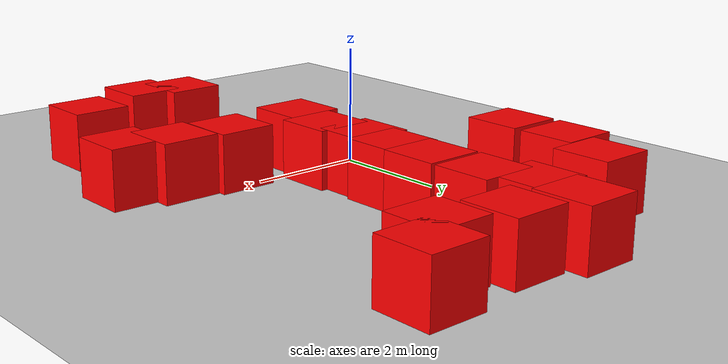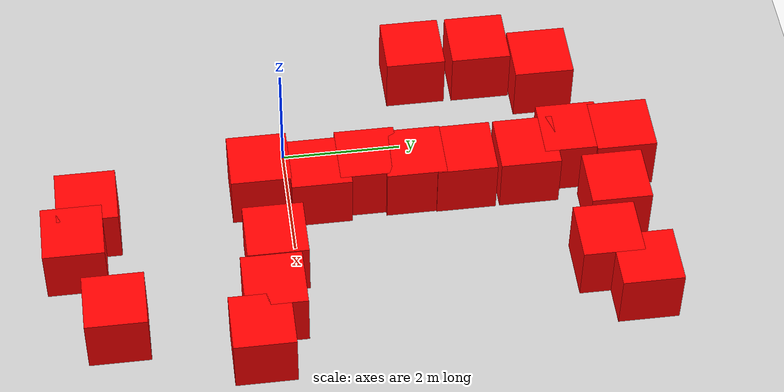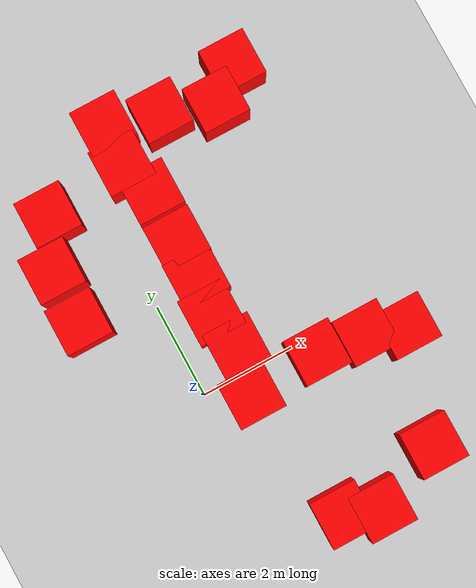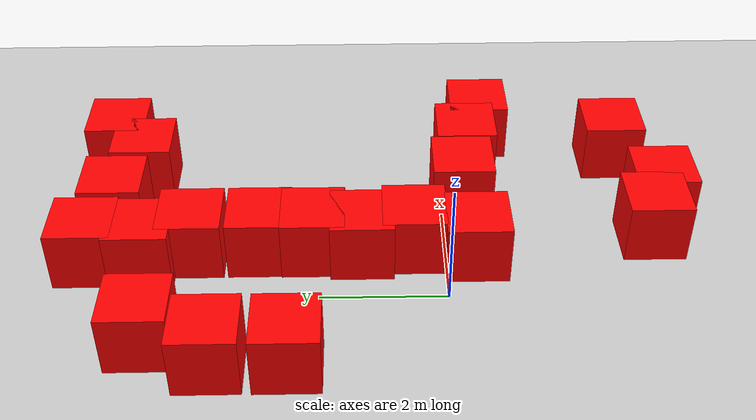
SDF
<sdf version="1.7">
 <world name="default">
  <model name="ground_plane">
   <static>1</static>
   <link name="link">
    <collision name="collision">
     <geometry><plane><normal>0 0 1</normal><size>100 100</size></plane></geometry>
     <surface><friction><ode><mu>100</mu><mu2>50</mu2></ode></friction></surface>
    </collision>
    <visual name="visual">
     <cast_shadows>0</cast_shadows>
     <geometry><plane><normal>0 0 1</normal><size>100 100</size></plane></geometry>
     <material>
      <script><uri>file://media/materials/scripts/gazebo.material</uri><name>Gazebo/Grey</name></script>
     </material>
    </visual>
   </link>
  </model>
  <model name="unit_box">
   <link name="link">
    <inertial>
     <mass>1</mass>
     <inertia>
      <ixx>0.166667</ixx>
      <ixy>0</ixy>
      <ixz>0</ixz>
      <iyy>0.166667</iyy>
      <iyz>0</iyz>
      <izz>0.166667</izz>
     </inertia>
    </inertial>
    <visual name="visual">
     <geometry><box><size>1 1 1</size></box></geometry>
     <material>
      <script><name>Gazebo/Grey</name><uri>file://media/materials/scripts/gazebo.material</uri></script>
      <shader type="pixel"><normal_map>__default__</normal_map></shader>
      <ambient>1 0 0 0</ambient>
      <diffuse>0.7 0.7 0.7 1</diffuse>
      <specular>0.01 0.01 0.01 1</specular>
      <emissive>0 0 0 1</emissive>
     </material>
    </visual>
    <collision name="collision">
     <geometry><box><size>1 1 1</size></box></geometry>
     <surface>
      <friction>
       <ode><mu>1</mu><mu2>1</mu2><fdir1>0 0 0</fdir1><slip1>0</slip1><slip2>0</slip2></ode>
       <torsional>
        <coefficient>1</coefficient>
        <patch_radius>0</patch_radius>
        <surface_radius>0</surface_radius>
        <use_patch_radius>1</use_patch_radius>
        <ode><slip>0</slip></ode>
       </torsional>
      </friction>
      <bounce><restitution_coefficient>0</restitution_coefficient><threshold>1e+06</threshold></bounce>
      <contact>
       <collide_without_contact>0</collide_without_contact>
       <collide_without_contact_bitmask>1</collide_without_contact_bitmask>
       <collide_bitmask>1</collide_bitmask>
       <ode>
        <soft_cfm>0</soft_cfm>
        <soft_erp>0.2</soft_erp>
        <kp>1e+13</kp>
        <kd>1</kd>
        <max_vel>0.01</max_vel>
        <min_depth>0</min_depth>
       </ode>
       <bullet>
        <split_impulse>1</split_impulse>
        <split_impulse_penetration_threshold>-0.01</split_impulse_penetration_threshold>
        <soft_cfm>0</soft_cfm>
        <soft_erp>0.2</soft_erp>
        <kp>1e+13</kp>
        <kd>1</kd>
       </bullet>
      </contact>
     </surface>
    </collision>
   </link>
   <static>0</static>
   <pose>0.827845 -0.466795 0.5 0 -0 0</pose>
  </model>
  <model name="unit_box_clone_clone_0">
   <link name="link">
    <inertial>
     <mass>1</mass>
     <inertia>
      <ixx>0.166667</ixx>
      <ixy>0</ixy>
      <ixz>0</ixz>
      <iyy>0.166667</iyy>
      <iyz>0</iyz>
      <izz>0.166667</izz>
     </inertia>
    </inertial>
    <visual name="visual">
     <geometry><box><size>1 1 1</size></box></geometry>
     <material>
      <script><name>Gazebo/Grey</name><uri>file://media/materials/scripts/gazebo.material</uri></script>
      <shader type="pixel"><normal_map>__default__</normal_map></shader>
      <ambient>1 0 0 0</ambient>
      <diffuse>0.7 0.7 0.7 1</diffuse>
      <specular>0.01 0.01 0.01 1</specular>
      <emissive>0 0 0 1</emissive>
     </material>
    </visual>
    <collision name="collision">
     <geometry><box><size>1 1 1</size></box></geometry>
     <surface>
      <friction>
       <ode><mu>1</mu><mu2>1</mu2><fdir1>0 0 0</fdir1><slip1>0</slip1><slip2>0</slip2></ode>
       <torsional>
        <coefficient>1</coefficient>
        <patch_radius>0</patch_radius>
        <surface_radius>0</surface_radius>
        <use_patch_radius>1</use_patch_radius>
        <ode><slip>0</slip></ode>
       </torsional>
      </friction>
      <bounce><restitution_coefficient>0</restitution_coefficient><threshold>1e+06</threshold></bounce>
      <contact>
       <collide_without_contact>0</collide_without_contact>
       <collide_without_contact_bitmask>1</collide_without_contact_bitmask>
       <collide_bitmask>1</collide_bitmask>
       <ode>
        <soft_cfm>0</soft_cfm>
        <soft_erp>0.2</soft_erp>
        <kp>1e+13</kp>
        <kd>1</kd>
        <max_vel>0.01</max_vel>
        <min_depth>0</min_depth>
       </ode>
       <bullet>
        <split_impulse>1</split_impulse>
        <split_impulse_penetration_threshold>-0.01</split_impulse_penetration_threshold>
        <soft_cfm>0</soft_cfm>
        <soft_erp>0.2</soft_erp>
        <kp>1e+13</kp>
        <kd>1</kd>
       </bullet>
      </contact>
     </surface>
    </collision>
   </link>
   <static>0</static>
   <pose>0.811864 5.64086 0.5 0 -0 0</pose>
  </model>
  <model name="unit_box_clone_clone_7">
   <link name="link">
    <inertial>
     <mass>1</mass>
     <inertia>
      <ixx>0.166667</ixx>
      <ixy>0</ixy>
      <ixz>0</ixz>
      <iyy>0.166667</iyy>
      <iyz>0</iyz>
      <izz>0.166667</izz>
     </inertia>
    </inertial>
    <visual name="visual">
     <geometry><box><size>1 1 1</size></box></geometry>
     <material>
      <script><name>Gazebo/Grey</name><uri>file://media/materials/scripts/gazebo.material</uri></script>
      <shader type="pixel"><normal_map>__default__</normal_map></shader>
      <ambient>1 0 0 0</ambient>
      <diffuse>0.7 0.7 0.7 1</diffuse>
      <specular>0.01 0.01 0.01 1</specular>
      <emissive>0 0 0 1</emissive>
     </material>
    </visual>
    <collision name="collision">
     <geometry><box><size>1 1 1</size></box></geometry>
     <surface>
      <friction>
       <ode><mu>1</mu><mu2>1</mu2><fdir1>0 0 0</fdir1><slip1>0</slip1><slip2>0</slip2></ode>
       <torsional>
        <coefficient>1</coefficient>
        <patch_radius>0</patch_radius>
        <surface_radius>0</surface_radius>
        <use_patch_radius>1</use_patch_radius>
        <ode><slip>0</slip></ode>
       </torsional>
      </friction>
      <bounce><restitution_coefficient>0</restitution_coefficient><threshold>1e+06</threshold></bounce>
      <contact>
       <collide_without_contact>0</collide_without_contact>
       <collide_without_contact_bitmask>1</collide_without_contact_bitmask>
       <collide_bitmask>1</collide_bitmask>
       <ode>
        <soft_cfm>0</soft_cfm>
        <soft_erp>0.2</soft_erp>
        <kp>1e+13</kp>
        <kd>1</kd>
        <max_vel>0.01</max_vel>
        <min_depth>0</min_depth>
       </ode>
       <bullet>
        <split_impulse>1</split_impulse>
        <split_impulse_penetration_threshold>-0.01</split_impulse_penetration_threshold>
        <soft_cfm>0</soft_cfm>
        <soft_erp>0.2</soft_erp>
        <kp>1e+13</kp>
        <kd>1</kd>
       </bullet>
      </contact>
     </surface>
    </collision>
   </link>
   <static>0</static>
   <pose>1.29425 -3.3393 0.5 0 -0 0</pose>
  </model>
  <model name="unit_box_clone_clone_17">
   <link name="link">
    <inertial>
     <mass>1</mass>
     <inertia>
      <ixx>0.166667</ixx>
      <ixy>0</ixy>
      <ixz>0</ixz>
      <iyy>0.166667</iyy>
      <iyz>0</iyz>
      <izz>0.166667</izz>
     </inertia>
    </inertial>
    <visual name="visual">
     <geometry><box><size>1 1 1</size></box></geometry>
     <material>
      <script><name>Gazebo/Grey</name><uri>file://media/materials/scripts/gazebo.material</uri></script>
      <shader type="pixel"><normal_map>__default__</normal_map></shader>
      <ambient>1 0 0 0</ambient>
      <diffuse>0.7 0.7 0.7 1</diffuse>
      <specular>0.01 0.01 0.01 1</specular>
      <emissive>0 0 0 1</emissive>
     </material>
    </visual>
    <collision name="collision">
     <geometry><box><size>1 1 1</size></box></geometry>
     <surface>
      <friction>
       <ode><mu>1</mu><mu2>1</mu2><fdir1>0 0 0</fdir1><slip1>0</slip1><slip2>0</slip2></ode>
       <torsional>
        <coefficient>1</coefficient>
        <patch_radius>0</patch_radius>
        <surface_radius>0</surface_radius>
        <use_patch_radius>1</use_patch_radius>
        <ode><slip>0</slip></ode>
       </torsional>
      </friction>
      <bounce><restitution_coefficient>0</restitution_coefficient><threshold>1e+06</threshold></bounce>
      <contact>
       <collide_without_contact>0</collide_without_contact>
       <collide_without_contact_bitmask>1</collide_without_contact_bitmask>
       <collide_bitmask>1</collide_bitmask>
       <ode>
        <soft_cfm>0</soft_cfm>
        <soft_erp>0.2</soft_erp>
        <kp>1e+13</kp>
        <kd>1</kd>
        <max_vel>0.01</max_vel>
        <min_depth>0</min_depth>
       </ode>
       <bullet>
        <split_impulse>1</split_impulse>
        <split_impulse_penetration_threshold>-0.01</split_impulse_penetration_threshold>
        <soft_cfm>0</soft_cfm>
        <soft_erp>0.2</soft_erp>
        <kp>1e+13</kp>
        <kd>1</kd>
       </bullet>
      </contact>
     </surface>
    </collision>
   </link>
   <static>0</static>
   <pose>3.37113 -0.462348 0.5 0 -0 0</pose>
  </model>
  <model name="unit_box_clone_clone_19">
   <link name="link">
    <inertial>
     <mass>1</mass>
     <inertia>
      <ixx>0.166667</ixx>
      <ixy>0</ixy>
      <ixz>0</ixz>
      <iyy>0.166667</iyy>
      <iyz>0</iyz>
      <izz>0.166667</izz>
     </inertia>
    </inertial>
    <visual name="visual">
     <geometry><box><size>1 1 1</size></box></geometry>
     <material>
      <script><name>Gazebo/Grey</name><uri>file://media/materials/scripts/gazebo.material</uri></script>
      <shader type="pixel"><normal_map>__default__</normal_map></shader>
      <ambient>1 0 0 0</ambient>
      <diffuse>0.7 0.7 0.7 1</diffuse>
      <specular>0.01 0.01 0.01 1</specular>
      <emissive>0 0 0 1</emissive>
     </material>
    </visual>
    <collision name="collision">
     <geometry><box><size>1 1 1</size></box></geometry>
     <surface>
      <friction>
       <ode><mu>1</mu><mu2>1</mu2><fdir1>0 0 0</fdir1><slip1>0</slip1><slip2>0</slip2></ode>
       <torsional>
        <coefficient>1</coefficient>
        <patch_radius>0</patch_radius>
        <surface_radius>0</surface_radius>
        <use_patch_radius>1</use_patch_radius>
        <ode><slip>0</slip></ode>
       </torsional>
      </friction>
      <bounce><restitution_coefficient>0</restitution_coefficient><threshold>1e+06</threshold></bounce>
      <contact>
       <collide_without_contact>0</collide_without_contact>
       <collide_without_contact_bitmask>1</collide_without_contact_bitmask>
       <collide_bitmask>1</collide_bitmask>
       <ode>
        <soft_cfm>0</soft_cfm>
        <soft_erp>0.2</soft_erp>
        <kp>1e+13</kp>
        <kd>1</kd>
        <max_vel>0.01</max_vel>
        <min_depth>0</min_depth>
       </ode>
       <bullet>
        <split_impulse>1</split_impulse>
        <split_impulse_penetration_threshold>-0.01</split_impulse_penetration_threshold>
        <soft_cfm>0</soft_cfm>
        <soft_erp>0.2</soft_erp>
        <kp>1e+13</kp>
        <kd>1</kd>
       </bullet>
      </contact>
     </surface>
    </collision>
   </link>
   <static>0</static>
   <pose>3.47377 -3 0.5 0 -0 0</pose>
  </model>
  <model name="unit_box_clone_clone_21">
   <link name="link">
    <inertial>
     <mass>1</mass>
     <inertia>
      <ixx>0.166667</ixx>
      <ixy>0</ixy>
      <ixz>0</ixz>
      <iyy>0.166667</iyy>
      <iyz>0</iyz>
      <izz>0.166667</izz>
     </inertia>
    </inertial>
    <visual name="visual">
     <geometry><box><size>1 1 1</size></box></geometry>
     <material>
      <script><name>Gazebo/Grey</name><uri>file://media/materials/scripts/gazebo.material</uri></script>
      <shader type="pixel"><normal_map>__default__</normal_map></shader>
      <ambient>1 0 0 0</ambient>
      <diffuse>0.7 0.7 0.7 1</diffuse>
      <specular>0.01 0.01 0.01 1</specular>
      <emissive>0 0 0 1</emissive>
     </material>
    </visual>
    <collision name="collision">
     <geometry><box><size>1 1 1</size></box></geometry>
     <surface>
      <friction>
       <ode><mu>1</mu><mu2>1</mu2><fdir1>0 0 0</fdir1><slip1>0</slip1><slip2>0</slip2></ode>
       <torsional>
        <coefficient>1</coefficient>
        <patch_radius>0</patch_radius>
        <surface_radius>0</surface_radius>
        <use_patch_radius>1</use_patch_radius>
        <ode><slip>0</slip></ode>
       </torsional>
      </friction>
      <bounce><restitution_coefficient>0</restitution_coefficient><threshold>1e+06</threshold></bounce>
      <contact>
       <collide_without_contact>0</collide_without_contact>
       <collide_without_contact_bitmask>1</collide_without_contact_bitmask>
       <collide_bitmask>1</collide_bitmask>
       <ode>
        <soft_cfm>0</soft_cfm>
        <soft_erp>0.2</soft_erp>
        <kp>1e+13</kp>
        <kd>1</kd>
        <max_vel>0.01</max_vel>
        <min_depth>0</min_depth>
       </ode>
       <bullet>
        <split_impulse>1</split_impulse>
        <split_impulse_penetration_threshold>-0.01</split_impulse_penetration_threshold>
        <soft_cfm>0</soft_cfm>
        <soft_erp>0.2</soft_erp>
        <kp>1e+13</kp>
        <kd>1</kd>
       </bullet>
      </contact>
     </surface>
    </collision>
   </link>
   <static>0</static>
   <pose>0.913254 1.33199 0.5 0 -0 0</pose>
  </model>
  <model name="unit_box_clone_clone_22">
   <link name="link">
    <inertial>
     <mass>1</mass>
     <inertia>
      <ixx>0.166667</ixx>
      <ixy>0</ixy>
      <ixz>0</ixz>
      <iyy>0.166667</iyy>
      <iyz>0</iyz>
      <izz>0.166667</izz>
     </inertia>
    </inertial>
    <visual name="visual">
     <geometry><box><size>1 1 1</size></box></geometry>
     <material>
      <script><name>Gazebo/Grey</name><uri>file://media/materials/scripts/gazebo.material</uri></script>
      <shader type="pixel"><normal_map>__default__</normal_map></shader>
      <ambient>1 0 0 0</ambient>
      <diffuse>0.7 0.7 0.7 1</diffuse>
      <specular>0.01 0.01 0.01 1</specular>
      <emissive>0 0 0 1</emissive>
     </material>
    </visual>
    <collision name="collision">
     <geometry><box><size>1 1 1</size></box></geometry>
     <surface>
      <friction>
       <ode><mu>1</mu><mu2>1</mu2><fdir1>0 0 0</fdir1><slip1>0</slip1><slip2>0</slip2></ode>
       <torsional>
        <coefficient>1</coefficient>
        <patch_radius>0</patch_radius>
        <surface_radius>0</surface_radius>
        <use_patch_radius>1</use_patch_radius>
        <ode><slip>0</slip></ode>
       </torsional>
      </friction>
      <bounce><restitution_coefficient>0</restitution_coefficient><threshold>1e+06</threshold></bounce>
      <contact>
       <collide_without_contact>0</collide_without_contact>
       <collide_without_contact_bitmask>1</collide_without_contact_bitmask>
       <collide_bitmask>1</collide_bitmask>
       <ode>
        <soft_cfm>0</soft_cfm>
        <soft_erp>0.2</soft_erp>
        <kp>1e+13</kp>
        <kd>1</kd>
        <max_vel>0.01</max_vel>
        <min_depth>0</min_depth>
       </ode>
       <bullet>
        <split_impulse>1</split_impulse>
        <split_impulse_penetration_threshold>-0.01</split_impulse_penetration_threshold>
        <soft_cfm>0</soft_cfm>
        <soft_erp>0.2</soft_erp>
        <kp>1e+13</kp>
        <kd>1</kd>
       </bullet>
      </contact>
     </surface>
    </collision>
   </link>
   <static>0</static>
   <pose>1.00322 2.93506 0.5 0 -0 0</pose>
  </model>
  <model name="unit_box_clone_clone_24">
   <link name="link">
    <inertial>
     <mass>1</mass>
     <inertia>
      <ixx>0.166667</ixx>
      <ixy>0</ixy>
      <ixz>0</ixz>
      <iyy>0.166667</iyy>
      <iyz>0</iyz>
      <izz>0.166667</izz>
     </inertia>
    </inertial>
    <visual name="visual">
     <geometry><box><size>1 1 1</size></box></geometry>
     <material>
      <script><name>Gazebo/Grey</name><uri>file://media/materials/scripts/gazebo.material</uri></script>
      <shader type="pixel"><normal_map>__default__</normal_map></shader>
      <ambient>1 0 0 0</ambient>
      <diffuse>0.7 0.7 0.7 1</diffuse>
      <specular>0.01 0.01 0.01 1</specular>
      <emissive>0 0 0 1</emissive>
     </material>
    </visual>
    <collision name="collision">
     <geometry><box><size>1 1 1</size></box></geometry>
     <surface>
      <friction>
       <ode><mu>1</mu><mu2>1</mu2><fdir1>0 0 0</fdir1><slip1>0</slip1><slip2>0</slip2></ode>
       <torsional>
        <coefficient>1</coefficient>
        <patch_radius>0</patch_radius>
        <surface_radius>0</surface_radius>
        <use_patch_radius>1</use_patch_radius>
        <ode><slip>0</slip></ode>
       </torsional>
      </friction>
      <bounce><restitution_coefficient>0</restitution_coefficient><threshold>1e+06</threshold></bounce>
      <contact>
       <collide_without_contact>0</collide_without_contact>
       <collide_without_contact_bitmask>1</collide_without_contact_bitmask>
       <collide_bitmask>1</collide_bitmask>
       <ode>
        <soft_cfm>0</soft_cfm>
        <soft_erp>0.2</soft_erp>
        <kp>1e+13</kp>
        <kd>1</kd>
        <max_vel>0.01</max_vel>
        <min_depth>0</min_depth>
       </ode>
       <bullet>
        <split_impulse>1</split_impulse>
        <split_impulse_penetration_threshold>-0.01</split_impulse_penetration_threshold>
        <soft_cfm>0</soft_cfm>
        <soft_erp>0.2</soft_erp>
        <kp>1e+13</kp>
        <kd>1</kd>
       </bullet>
      </contact>
     </surface>
    </collision>
   </link>
   <static>0</static>
   <pose>-1.45165 3.5424 0.5 0 -0 0</pose>
  </model>
  <model name="unit_box_clone_clone_26">
   <link name="link">
    <inertial>
     <mass>1</mass>
     <inertia>
      <ixx>0.166667</ixx>
      <ixy>0</ixy>
      <ixz>0</ixz>
      <iyy>0.166667</iyy>
      <iyz>0</iyz>
      <izz>0.166667</izz>
     </inertia>
    </inertial>
    <visual name="visual">
     <geometry><box><size>1 1 1</size></box></geometry>
     <material>
      <script><name>Gazebo/Grey</name><uri>file://media/materials/scripts/gazebo.material</uri></script>
      <shader type="pixel"><normal_map>__default__</normal_map></shader>
      <ambient>1 0 0 0</ambient>
      <diffuse>0.7 0.7 0.7 1</diffuse>
      <specular>0.01 0.01 0.01 1</specular>
      <emissive>0 0 0 1</emissive>
     </material>
    </visual>
    <collision name="collision">
     <geometry><box><size>1 1 1</size></box></geometry>
     <surface>
      <friction>
       <ode><mu>1</mu><mu2>1</mu2><fdir1>0 0 0</fdir1><slip1>0</slip1><slip2>0</slip2></ode>
       <torsional>
        <coefficient>1</coefficient>
        <patch_radius>0</patch_radius>
        <surface_radius>0</surface_radius>
        <use_patch_radius>1</use_patch_radius>
        <ode><slip>0</slip></ode>
       </torsional>
      </friction>
      <bounce><restitution_coefficient>0</restitution_coefficient><threshold>1e+06</threshold></bounce>
      <contact>
       <collide_without_contact>0</collide_without_contact>
       <collide_without_contact_bitmask>1</collide_without_contact_bitmask>
       <collide_bitmask>1</collide_bitmask>
       <ode>
        <soft_cfm>0</soft_cfm>
        <soft_erp>0.2</soft_erp>
        <kp>1e+13</kp>
        <kd>1</kd>
        <max_vel>0.01</max_vel>
        <min_depth>0</min_depth>
       </ode>
       <bullet>
        <split_impulse>1</split_impulse>
        <split_impulse_penetration_threshold>-0.01</split_impulse_penetration_threshold>
        <soft_cfm>0</soft_cfm>
        <soft_erp>0.2</soft_erp>
        <kp>1e+13</kp>
        <kd>1</kd>
       </bullet>
      </contact>
     </surface>
    </collision>
   </link>
   <static>0</static>
   <pose>3.64321 5.51426 0.5 0 -0 0</pose>
  </model>
  <model name="unit_box_clone_clone_35">
   <link name="link">
    <inertial>
     <mass>1</mass>
     <inertia>
      <ixx>0.166667</ixx>
      <ixy>0</ixy>
      <ixz>0</ixz>
      <iyy>0.166667</iyy>
      <iyz>0</iyz>
      <izz>0.166667</izz>
     </inertia>
    </inertial>
    <visual name="visual">
     <geometry><box><size>1 1 1</size></box></geometry>
     <material>
      <script><name>Gazebo/Grey</name><uri>file://media/materials/scripts/gazebo.material</uri></script>
      <shader type="pixel"><normal_map>__default__</normal_map></shader>
      <ambient>1 0 0 0</ambient>
      <diffuse>0.7 0.7 0.7 1</diffuse>
      <specular>0.01 0.01 0.01 1</specular>
      <emissive>0 0 0 1</emissive>
     </material>
    </visual>
    <collision name="collision">
     <geometry><box><size>1 1 1</size></box></geometry>
     <surface>
      <friction>
       <ode><mu>1</mu><mu2>1</mu2><fdir1>0 0 0</fdir1><slip1>0</slip1><slip2>0</slip2></ode>
       <torsional>
        <coefficient>1</coefficient>
        <patch_radius>0</patch_radius>
        <surface_radius>0</surface_radius>
        <use_patch_radius>1</use_patch_radius>
        <ode><slip>0</slip></ode>
       </torsional>
      </friction>
      <bounce><restitution_coefficient>0</restitution_coefficient><threshold>1e+06</threshold></bounce>
      <contact>
       <collide_without_contact>0</collide_without_contact>
       <collide_without_contact_bitmask>1</collide_without_contact_bitmask>
       <collide_bitmask>1</collide_bitmask>
       <ode>
        <soft_cfm>0</soft_cfm>
        <soft_erp>0.2</soft_erp>
        <kp>1e+13</kp>
        <kd>1</kd>
        <max_vel>0.01</max_vel>
        <min_depth>0</min_depth>
       </ode>
       <bullet>
        <split_impulse>1</split_impulse>
        <split_impulse_penetration_threshold>-0.01</split_impulse_penetration_threshold>
        <soft_cfm>0</soft_cfm>
        <soft_erp>0.2</soft_erp>
        <kp>1e+13</kp>
        <kd>1</kd>
       </bullet>
      </contact>
     </surface>
    </collision>
   </link>
   <static>0</static>
   <pose>4.14663 -0.725697 0.5 0 -0 0</pose>
  </model>
  <model name="unit_box_clone_clone_36">
   <link name="link">
    <inertial>
     <mass>1</mass>
     <inertia>
      <ixx>0.166667</ixx>
      <ixy>0</ixy>
      <ixz>0</ixz>
      <iyy>0.166667</iyy>
      <iyz>0</iyz>
      <izz>0.166667</izz>
     </inertia>
    </inertial>
    <visual name="visual">
     <geometry><box><size>1 1 1</size></box></geometry>
     <material>
      <script><name>Gazebo/Grey</name><uri>file://media/materials/scripts/gazebo.material</uri></script>
      <shader type="pixel"><normal_map>__default__</normal_map></shader>
      <ambient>1 0 0 0</ambient>
      <diffuse>0.7 0.7 0.7 1</diffuse>
      <specular>0.01 0.01 0.01 1</specular>
      <emissive>0 0 0 1</emissive>
     </material>
    </visual>
    <collision name="collision">
     <geometry><box><size>1 1 1</size></box></geometry>
     <surface>
      <friction>
       <ode><mu>1</mu><mu2>1</mu2><fdir1>0 0 0</fdir1><slip1>0</slip1><slip2>0</slip2></ode>
       <torsional>
        <coefficient>1</coefficient>
        <patch_radius>0</patch_radius>
        <surface_radius>0</surface_radius>
        <use_patch_radius>1</use_patch_radius>
        <ode><slip>0</slip></ode>
       </torsional>
      </friction>
      <bounce><restitution_coefficient>0</restitution_coefficient><threshold>1e+06</threshold></bounce>
      <contact>
       <collide_without_contact>0</collide_without_contact>
       <collide_without_contact_bitmask>1</collide_without_contact_bitmask>
       <collide_bitmask>1</collide_bitmask>
       <ode>
        <soft_cfm>0</soft_cfm>
        <soft_erp>0.2</soft_erp>
        <kp>1e+13</kp>
        <kd>1</kd>
        <max_vel>0.01</max_vel>
        <min_depth>0</min_depth>
       </ode>
       <bullet>
        <split_impulse>1</split_impulse>
        <split_impulse_penetration_threshold>-0.01</split_impulse_penetration_threshold>
        <soft_cfm>0</soft_cfm>
        <soft_erp>0.2</soft_erp>
        <kp>1e+13</kp>
        <kd>1</kd>
       </bullet>
      </contact>
     </surface>
    </collision>
   </link>
   <static>0</static>
   <pose>2.35585 -0.340167 0.5 0 -0 0</pose>
  </model>
  <model name="unit_box_clone_clone_37">
   <link name="link">
    <inertial>
     <mass>1</mass>
     <inertia>
      <ixx>0.166667</ixx>
      <ixy>0</ixy>
      <ixz>0</ixz>
      <iyy>0.166667</iyy>
      <iyz>0</iyz>
      <izz>0.166667</izz>
     </inertia>
    </inertial>
    <visual name="visual">
     <geometry><box><size>1 1 1</size></box></geometry>
     <material>
      <script><name>Gazebo/Grey</name><uri>file://media/materials/scripts/gazebo.material</uri></script>
      <shader type="pixel"><normal_map>__default__</normal_map></shader>
      <ambient>1 0 0 0</ambient>
      <diffuse>0.7 0.7 0.7 1</diffuse>
      <specular>0.01 0.01 0.01 1</specular>
      <emissive>0 0 0 1</emissive>
     </material>
    </visual>
    <collision name="collision">
     <geometry><box><size>1 1 1</size></box></geometry>
     <surface>
      <friction>
       <ode><mu>1</mu><mu2>1</mu2><fdir1>0 0 0</fdir1><slip1>0</slip1><slip2>0</slip2></ode>
       <torsional>
        <coefficient>1</coefficient>
        <patch_radius>0</patch_radius>
        <surface_radius>0</surface_radius>
        <use_patch_radius>1</use_patch_radius>
        <ode><slip>0</slip></ode>
       </torsional>
      </friction>
      <bounce><restitution_coefficient>0</restitution_coefficient><threshold>1e+06</threshold></bounce>
      <contact>
       <collide_without_contact>0</collide_without_contact>
       <collide_without_contact_bitmask>1</collide_without_contact_bitmask>
       <collide_bitmask>1</collide_bitmask>
       <ode>
        <soft_cfm>0</soft_cfm>
        <soft_erp>0.2</soft_erp>
        <kp>1e+13</kp>
        <kd>1</kd>
        <max_vel>0.01</max_vel>
        <min_depth>0</min_depth>
       </ode>
       <bullet>
        <split_impulse>1</split_impulse>
        <split_impulse_penetration_threshold>-0.01</split_impulse_penetration_threshold>
        <soft_cfm>0</soft_cfm>
        <soft_erp>0.2</soft_erp>
        <kp>1e+13</kp>
        <kd>1</kd>
       </bullet>
      </contact>
     </surface>
    </collision>
   </link>
   <static>0</static>
   <pose>1.02713 0.517106 0.5 0 -0 0</pose>
  </model>
  <model name="unit_box_clone_clone_38">
   <link name="link">
    <inertial>
     <mass>1</mass>
     <inertia>
      <ixx>0.166667</ixx>
      <ixy>0</ixy>
      <ixz>0</ixz>
      <iyy>0.166667</iyy>
      <iyz>0</iyz>
      <izz>0.166667</izz>
     </inertia>
    </inertial>
    <visual name="visual">
     <geometry><box><size>1 1 1</size></box></geometry>
     <material>
      <script><name>Gazebo/Grey</name><uri>file://media/materials/scripts/gazebo.material</uri></script>
      <shader type="pixel"><normal_map>__default__</normal_map></shader>
      <ambient>1 0 0 0</ambient>
      <diffuse>0.7 0.7 0.7 1</diffuse>
      <specular>0.01 0.01 0.01 1</specular>
      <emissive>0 0 0 1</emissive>
     </material>
    </visual>
    <collision name="collision">
     <geometry><box><size>1 1 1</size></box></geometry>
     <surface>
      <friction>
       <ode><mu>1</mu><mu2>1</mu2><fdir1>0 0 0</fdir1><slip1>0</slip1><slip2>0</slip2></ode>
       <torsional>
        <coefficient>1</coefficient>
        <patch_radius>0</patch_radius>
        <surface_radius>0</surface_radius>
        <use_patch_radius>1</use_patch_radius>
        <ode><slip>0</slip></ode>
       </torsional>
      </friction>
      <bounce><restitution_coefficient>0</restitution_coefficient><threshold>1e+06</threshold></bounce>
      <contact>
       <collide_without_contact>0</collide_without_contact>
       <collide_without_contact_bitmask>1</collide_without_contact_bitmask>
       <collide_bitmask>1</collide_bitmask>
       <ode>
        <soft_cfm>0</soft_cfm>
        <soft_erp>0.2</soft_erp>
        <kp>1e+13</kp>
        <kd>1</kd>
        <max_vel>0.01</max_vel>
        <min_depth>0</min_depth>
       </ode>
       <bullet>
        <split_impulse>1</split_impulse>
        <split_impulse_penetration_threshold>-0.01</split_impulse_penetration_threshold>
        <soft_cfm>0</soft_cfm>
        <soft_erp>0.2</soft_erp>
        <kp>1e+13</kp>
        <kd>1</kd>
       </bullet>
      </contact>
     </surface>
    </collision>
   </link>
   <static>0</static>
   <pose>0.98682 2.09643 0.5 0 -0 0</pose>
  </model>
  <model name="unit_box_clone_clone_39">
   <link name="link">
    <inertial>
     <mass>1</mass>
     <inertia>
      <ixx>0.166667</ixx>
      <ixy>0</ixy>
      <ixz>0</ixz>
      <iyy>0.166667</iyy>
      <iyz>0</iyz>
      <izz>0.166667</izz>
     </inertia>
    </inertial>
    <visual name="visual">
     <geometry><box><size>1 1 1</size></box></geometry>
     <material>
      <script><name>Gazebo/Grey</name><uri>file://media/materials/scripts/gazebo.material</uri></script>
      <shader type="pixel"><normal_map>__default__</normal_map></shader>
      <ambient>1 0 0 0</ambient>
      <diffuse>0.7 0.7 0.7 1</diffuse>
      <specular>0.01 0.01 0.01 1</specular>
      <emissive>0 0 0 1</emissive>
     </material>
    </visual>
    <collision name="collision">
     <geometry><box><size>1 1 1</size></box></geometry>
     <surface>
      <friction>
       <ode><mu>1</mu><mu2>1</mu2><fdir1>0 0 0</fdir1><slip1>0</slip1><slip2>0</slip2></ode>
       <torsional>
        <coefficient>1</coefficient>
        <patch_radius>0</patch_radius>
        <surface_radius>0</surface_radius>
        <use_patch_radius>1</use_patch_radius>
        <ode><slip>0</slip></ode>
       </torsional>
      </friction>
      <bounce><restitution_coefficient>0</restitution_coefficient><threshold>1e+06</threshold></bounce>
      <contact>
       <collide_without_contact>0</collide_without_contact>
       <collide_without_contact_bitmask>1</collide_without_contact_bitmask>
       <collide_bitmask>1</collide_bitmask>
       <ode>
        <soft_cfm>0</soft_cfm>
        <soft_erp>0.2</soft_erp>
        <kp>1e+13</kp>
        <kd>1</kd>
        <max_vel>0.01</max_vel>
        <min_depth>0</min_depth>
       </ode>
       <bullet>
        <split_impulse>1</split_impulse>
        <split_impulse_penetration_threshold>-0.01</split_impulse_penetration_threshold>
        <soft_cfm>0</soft_cfm>
        <soft_erp>0.2</soft_erp>
        <kp>1e+13</kp>
        <kd>1</kd>
       </bullet>
      </contact>
     </surface>
    </collision>
   </link>
   <static>0</static>
   <pose>1 4 0.5 0 -0 0</pose>
  </model>
  <model name="unit_box_clone_clone_40">
   <link name="link">
    <inertial>
     <mass>1</mass>
     <inertia>
      <ixx>0.166667</ixx>
      <ixy>0</ixy>
      <ixz>0</ixz>
      <iyy>0.166667</iyy>
      <iyz>0</iyz>
      <izz>0.166667</izz>
     </inertia>
    </inertial>
    <visual name="visual">
     <geometry><box><size>1 1 1</size></box></geometry>
     <material>
      <script><name>Gazebo/Grey</name><uri>file://media/materials/scripts/gazebo.material</uri></script>
      <shader type="pixel"><normal_map>__default__</normal_map></shader>
      <ambient>1 0 0 0</ambient>
      <diffuse>0.7 0.7 0.7 1</diffuse>
      <specular>0.01 0.01 0.01 1</specular>
      <emissive>0 0 0 1</emissive>
     </material>
    </visual>
    <collision name="collision">
     <geometry><box><size>1 1 1</size></box></geometry>
     <surface>
      <friction>
       <ode><mu>1</mu><mu2>1</mu2><fdir1>0 0 0</fdir1><slip1>0</slip1><slip2>0</slip2></ode>
       <torsional>
        <coefficient>1</coefficient>
        <patch_radius>0</patch_radius>
        <surface_radius>0</surface_radius>
        <use_patch_radius>1</use_patch_radius>
        <ode><slip>0</slip></ode>
       </torsional>
      </friction>
      <bounce><restitution_coefficient>0</restitution_coefficient><threshold>1e+06</threshold></bounce>
      <contact>
       <collide_without_contact>0</collide_without_contact>
       <collide_without_contact_bitmask>1</collide_without_contact_bitmask>
       <collide_bitmask>1</collide_bitmask>
       <ode>
        <soft_cfm>0</soft_cfm>
        <soft_erp>0.2</soft_erp>
        <kp>1e+13</kp>
        <kd>1</kd>
        <max_vel>0.01</max_vel>
        <min_depth>0</min_depth>
       </ode>
       <bullet>
        <split_impulse>1</split_impulse>
        <split_impulse_penetration_threshold>-0.01</split_impulse_penetration_threshold>
        <soft_cfm>0</soft_cfm>
        <soft_erp>0.2</soft_erp>
        <kp>1e+13</kp>
        <kd>1</kd>
       </bullet>
      </contact>
     </surface>
    </collision>
   </link>
   <static>0</static>
   <pose>0.759846 4.76681 0.5 0 -0 0</pose>
  </model>
  <model name="unit_box_clone_clone_41">
   <link name="link">
    <inertial>
     <mass>1</mass>
     <inertia>
      <ixx>0.166667</ixx>
      <ixy>0</ixy>
      <ixz>0</ixz>
      <iyy>0.166667</iyy>
      <iyz>0</iyz>
      <izz>0.166667</izz>
     </inertia>
    </inertial>
    <visual name="visual">
     <geometry><box><size>1 1 1</size></box></geometry>
     <material>
      <script><name>Gazebo/Grey</name><uri>file://media/materials/scripts/gazebo.material</uri></script>
      <shader type="pixel"><normal_map>__default__</normal_map></shader>
      <ambient>1 0 0 0</ambient>
      <diffuse>0.7 0.7 0.7 1</diffuse>
      <specular>0.01 0.01 0.01 1</specular>
      <emissive>0 0 0 1</emissive>
     </material>
    </visual>
    <collision name="collision">
     <geometry><box><size>1 1 1</size></box></geometry>
     <surface>
      <friction>
       <ode><mu>1</mu><mu2>1</mu2><fdir1>0 0 0</fdir1><slip1>0</slip1><slip2>0</slip2></ode>
       <torsional>
        <coefficient>1</coefficient>
        <patch_radius>0</patch_radius>
        <surface_radius>0</surface_radius>
        <use_patch_radius>1</use_patch_radius>
        <ode><slip>0</slip></ode>
       </torsional>
      </friction>
      <bounce><restitution_coefficient>0</restitution_coefficient><threshold>1e+06</threshold></bounce>
      <contact>
       <collide_without_contact>0</collide_without_contact>
       <collide_without_contact_bitmask>1</collide_without_contact_bitmask>
       <collide_bitmask>1</collide_bitmask>
       <ode>
        <soft_cfm>0</soft_cfm>
        <soft_erp>0.2</soft_erp>
        <kp>1e+13</kp>
        <kd>1</kd>
        <max_vel>0.01</max_vel>
        <min_depth>0</min_depth>
       </ode>
       <bullet>
        <split_impulse>1</split_impulse>
        <split_impulse_penetration_threshold>-0.01</split_impulse_penetration_threshold>
        <soft_cfm>0</soft_cfm>
        <soft_erp>0.2</soft_erp>
        <kp>1e+13</kp>
        <kd>1</kd>
       </bullet>
      </contact>
     </surface>
    </collision>
   </link>
   <static>0</static>
   <pose>1.91372 5.34467 0.5 0 -0 0</pose>
  </model>
  <model name="unit_box_clone_clone_42">
   <link name="link">
    <inertial>
     <mass>1</mass>
     <inertia>
      <ixx>0.166667</ixx>
      <ixy>0</ixy>
      <ixz>0</ixz>
      <iyy>0.166667</iyy>
      <iyz>0</iyz>
      <izz>0.166667</izz>
     </inertia>
    </inertial>
    <visual name="visual">
     <geometry><box><size>1 1 1</size></box></geometry>
     <material>
      <script><name>Gazebo/Grey</name><uri>file://media/materials/scripts/gazebo.material</uri></script>
      <shader type="pixel"><normal_map>__default__</normal_map></shader>
      <ambient>1 0 0 0</ambient>
      <diffuse>0.7 0.7 0.7 1</diffuse>
      <specular>0.01 0.01 0.01 1</specular>
      <emissive>0 0 0 1</emissive>
     </material>
    </visual>
    <collision name="collision">
     <geometry><box><size>1 1 1</size></box></geometry>
     <surface>
      <friction>
       <ode><mu>1</mu><mu2>1</mu2><fdir1>0 0 0</fdir1><slip1>0</slip1><slip2>0</slip2></ode>
       <torsional>
        <coefficient>1</coefficient>
        <patch_radius>0</patch_radius>
        <surface_radius>0</surface_radius>
        <use_patch_radius>1</use_patch_radius>
        <ode><slip>0</slip></ode>
       </torsional>
      </friction>
      <bounce><restitution_coefficient>0</restitution_coefficient><threshold>1e+06</threshold></bounce>
      <contact>
       <collide_without_contact>0</collide_without_contact>
       <collide_without_contact_bitmask>1</collide_without_contact_bitmask>
       <collide_bitmask>1</collide_bitmask>
       <ode>
        <soft_cfm>0</soft_cfm>
        <soft_erp>0.2</soft_erp>
        <kp>1e+13</kp>
        <kd>1</kd>
        <max_vel>0.01</max_vel>
        <min_depth>0</min_depth>
       </ode>
       <bullet>
        <split_impulse>1</split_impulse>
        <split_impulse_penetration_threshold>-0.01</split_impulse_penetration_threshold>
        <soft_cfm>0</soft_cfm>
        <soft_erp>0.2</soft_erp>
        <kp>1e+13</kp>
        <kd>1</kd>
       </bullet>
      </contact>
     </surface>
    </collision>
   </link>
   <static>0</static>
   <pose>3 5 0.5 0 -0 0</pose>
  </model>
  <model name="unit_box_clone_clone_51">
   <link name="link">
    <inertial>
     <mass>1</mass>
     <inertia>
      <ixx>0.166667</ixx>
      <ixy>0</ixy>
      <ixz>0</ixz>
      <iyy>0.166667</iyy>
      <iyz>0</iyz>
      <izz>0.166667</izz>
     </inertia>
    </inertial>
    <visual name="visual">
     <geometry><box><size>1 1 1</size></box></geometry>
     <material>
      <script><name>Gazebo/Grey</name><uri>file://media/materials/scripts/gazebo.material</uri></script>
      <shader type="pixel"><normal_map>__default__</normal_map></shader>
      <ambient>1 0 0 0</ambient>
      <diffuse>0.7 0.7 0.7 1</diffuse>
      <specular>0.01 0.01 0.01 1</specular>
      <emissive>0 0 0 1</emissive>
     </material>
    </visual>
    <collision name="collision">
     <geometry><box><size>1 1 1</size></box></geometry>
     <surface>
      <friction>
       <ode><mu>1</mu><mu2>1</mu2><fdir1>0 0 0</fdir1><slip1>0</slip1><slip2>0</slip2></ode>
       <torsional>
        <coefficient>1</coefficient>
        <patch_radius>0</patch_radius>
        <surface_radius>0</surface_radius>
        <use_patch_radius>1</use_patch_radius>
        <ode><slip>0</slip></ode>
       </torsional>
      </friction>
      <bounce><restitution_coefficient>0</restitution_coefficient><threshold>1e+06</threshold></bounce>
      <contact>
       <collide_without_contact>0</collide_without_contact>
       <collide_without_contact_bitmask>1</collide_without_contact_bitmask>
       <collide_bitmask>1</collide_bitmask>
       <ode>
        <soft_cfm>0</soft_cfm>
        <soft_erp>0.2</soft_erp>
        <kp>1e+13</kp>
        <kd>1</kd>
        <max_vel>0.01</max_vel>
        <min_depth>0</min_depth>
       </ode>
       <bullet>
        <split_impulse>1</split_impulse>
        <split_impulse_penetration_threshold>-0.01</split_impulse_penetration_threshold>
        <soft_cfm>0</soft_cfm>
        <soft_erp>0.2</soft_erp>
        <kp>1e+13</kp>
        <kd>1</kd>
       </bullet>
      </contact>
     </surface>
    </collision>
   </link>
   <static>0</static>
   <pose>2.00682 -3.59543 0.5 0 -0 0</pose>
  </model>
  <model name="unit_box_clone_clone_63">
   <link name="link">
    <inertial>
     <mass>1</mass>
     <inertia>
      <ixx>0.166667</ixx>
      <ixy>0</ixy>
      <ixz>0</ixz>
      <iyy>0.166667</iyy>
      <iyz>0</iyz>
      <izz>0.166667</izz>
     </inertia>
    </inertial>
    <visual name="visual">
     <geometry><box><size>1 1 1</size></box></geometry>
     <material>
      <script><name>Gazebo/Grey</name><uri>file://media/materials/scripts/gazebo.material</uri></script>
      <shader type="pixel"><normal_map>__default__</normal_map></shader>
      <ambient>1 0 0 0</ambient>
      <diffuse>0.7 0.7 0.7 1</diffuse>
      <specular>0.01 0.01 0.01 1</specular>
      <emissive>0 0 0 1</emissive>
     </material>
    </visual>
    <collision name="collision">
     <geometry><box><size>1 1 1</size></box></geometry>
     <surface>
      <friction>
       <ode><mu>1</mu><mu2>1</mu2><fdir1>0 0 0</fdir1><slip1>0</slip1><slip2>0</slip2></ode>
       <torsional>
        <coefficient>1</coefficient>
        <patch_radius>0</patch_radius>
        <surface_radius>0</surface_radius>
        <use_patch_radius>1</use_patch_radius>
        <ode><slip>0</slip></ode>
       </torsional>
      </friction>
      <bounce><restitution_coefficient>0</restitution_coefficient><threshold>1e+06</threshold></bounce>
      <contact>
       <collide_without_contact>0</collide_without_contact>
       <collide_without_contact_bitmask>1</collide_without_contact_bitmask>
       <collide_bitmask>1</collide_bitmask>
       <ode>
        <soft_cfm>0</soft_cfm>
        <soft_erp>0.2</soft_erp>
        <kp>1e+13</kp>
        <kd>1</kd>
        <max_vel>0.01</max_vel>
        <min_depth>0</min_depth>
       </ode>
       <bullet>
        <split_impulse>1</split_impulse>
        <split_impulse_penetration_threshold>-0.01</split_impulse_penetration_threshold>
        <soft_cfm>0</soft_cfm>
        <soft_erp>0.2</soft_erp>
        <kp>1e+13</kp>
        <kd>1</kd>
       </bullet>
      </contact>
     </surface>
    </collision>
   </link>
   <static>0</static>
   <pose>-1 4.56442 0.5 0 -0 0</pose>
  </model>
  <model name="unit_box_clone_clone_64">
   <link name="link">
    <inertial>
     <mass>1</mass>
     <inertia>
      <ixx>0.166667</ixx>
      <ixy>0</ixy>
      <ixz>0</ixz>
      <iyy>0.166667</iyy>
      <iyz>0</iyz>
      <izz>0.166667</izz>
     </inertia>
    </inertial>
    <visual name="visual">
     <geometry><box><size>1 1 1</size></box></geometry>
     <material>
      <script><name>Gazebo/Grey</name><uri>file://media/materials/scripts/gazebo.material</uri></script>
      <shader type="pixel"><normal_map>__default__</normal_map></shader>
      <ambient>1 0 0 0</ambient>
      <diffuse>0.7 0.7 0.7 1</diffuse>
      <specular>0.01 0.01 0.01 1</specular>
      <emissive>0 0 0 1</emissive>
     </material>
    </visual>
    <collision name="collision">
     <geometry><box><size>1 1 1</size></box></geometry>
     <surface>
      <friction>
       <ode><mu>1</mu><mu2>1</mu2><fdir1>0 0 0</fdir1><slip1>0</slip1><slip2>0</slip2></ode>
       <torsional>
        <coefficient>1</coefficient>
        <patch_radius>0</patch_radius>
        <surface_radius>0</surface_radius>
        <use_patch_radius>1</use_patch_radius>
        <ode><slip>0</slip></ode>
       </torsional>
      </friction>
      <bounce><restitution_coefficient>0</restitution_coefficient><threshold>1e+06</threshold></bounce>
      <contact>
       <collide_without_contact>0</collide_without_contact>
       <collide_without_contact_bitmask>1</collide_without_contact_bitmask>
       <collide_bitmask>1</collide_bitmask>
       <ode>
        <soft_cfm>0</soft_cfm>
        <soft_erp>0.2</soft_erp>
        <kp>1e+13</kp>
        <kd>1</kd>
        <max_vel>0.01</max_vel>
        <min_depth>0</min_depth>
       </ode>
       <bullet>
        <split_impulse>1</split_impulse>
        <split_impulse_penetration_threshold>-0.01</split_impulse_penetration_threshold>
        <soft_cfm>0</soft_cfm>
        <soft_erp>0.2</soft_erp>
        <kp>1e+13</kp>
        <kd>1</kd>
       </bullet>
      </contact>
     </surface>
    </collision>
   </link>
   <static>0</static>
   <pose>-1.45928 2.41191 0.5 0 -0 0</pose>
  </model>
 </world>
</sdf>
